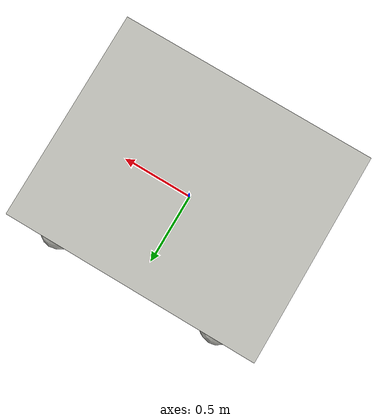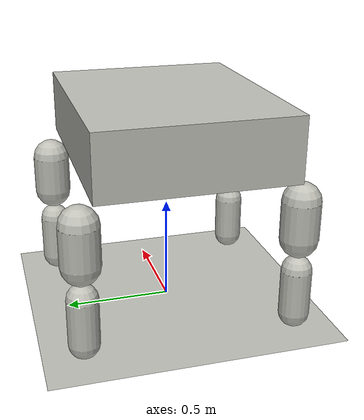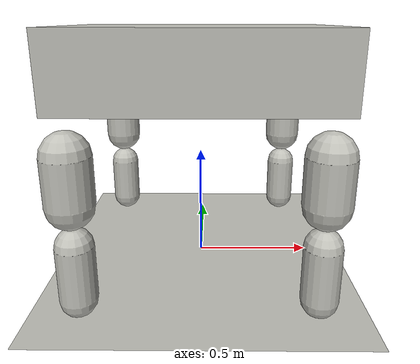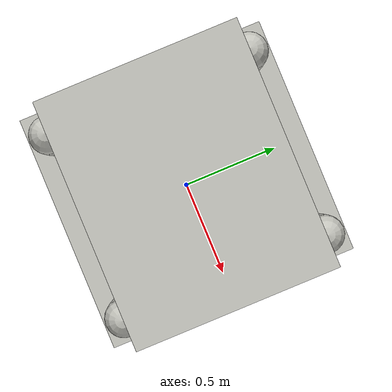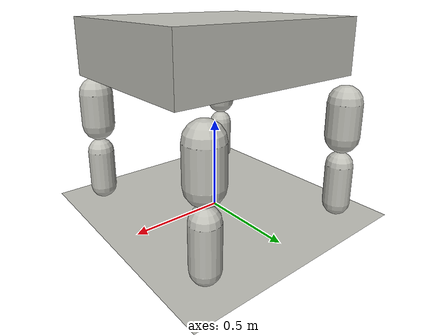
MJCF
<mujoco model="Quad_v01">
  <compiler angle="radian" autolimits="true" inertiafromgeom="auto"/>
  <option timestep="0.005" gravity="0 0 -9.81" integrator="implicitfast" cone="pyramidal"/>
  <size memory="16M"/>
  <visual><global offwidth="1280" offheight="720"/></visual>
  <default>
    <geom condim="3" friction="0.6 0.005 0.0001" solref="0.01 1" contype="1" conaffinity="1" rgba="0.75 0.75 0.72 1"/>
    <joint type="hinge" limited="true" armature="0" frictionloss="0" solreflimit="0.01 1"/>
  </default>
  <asset>
    <texture name="grid" type="2d" builtin="checker" rgb1="0.32 0.34 0.36" rgb2="0.26 0.28 0.3" width="256" height="256"/>
    <material name="grid" texture="grid" texrepeat="8 8" reflectance="0"/>
  </asset>
  <worldbody>
    <light pos="0 0 6" dir="0 0 -1" directional="true"/>
    <geom name="floor" type="plane" size="50 50 0.1" material="grid" friction="0.6 0.005 0.0001" solref="0.01 1"/>
    <body name="Quad_v01" pos="0 0 0.9">
      <freejoint name="root"/>
      <site name="root_site" size="0.02"/>
      <camera name="track" mode="trackcom" pos="-3 0 1.5" xyaxes="0 -1 0 0.45 0 0.9"/>
      <geom name="Quad_v01_geom" type="box" size="0.55 0.45 0.15" pos="0 0 0" mass="60"/>
      <body name="Upper_-1_-1" pos="-0.451 0.495 -0.36">
        <joint name="Upper_-1_-1" pos="0 0 0.18" axis="0 1 0" range="-0.785398 0.785398" damping="300"/>
        <geom name="Upper_-1_-1_geom" type="capsule" size="0.09" fromto="0 0 -0.09 0 0 0.09" mass="4"/>
        <body name="Lower_-1_-1" pos="0 0 -0.36">
          <joint name="Lower_-1_-1" pos="0 0 0.18" axis="0 1 0" range="-1.0472 1.0472" damping="300"/>
          <geom name="Lower_-1_-1_geom" type="capsule" size="0.072" fromto="0 0 -0.108 0 0 0.108" mass="3.5"/>
        </body>
      </body>
      <body name="Upper_-1_1" pos="0.451 0.495 -0.36">
        <joint name="Upper_-1_1" pos="0 0 0.18" axis="0 1 0" range="-0.785398 0.785398" damping="300"/>
        <geom name="Upper_-1_1_geom" type="capsule" size="0.09" fromto="0 0 -0.09 0 0 0.09" mass="4"/>
        <body name="Lower_-1_1" pos="0 0 -0.36">
          <joint name="Lower_-1_1" pos="0 0 0.18" axis="0 1 0" range="-1.0472 1.0472" damping="300"/>
          <geom name="Lower_-1_1_geom" type="capsule" size="0.072" fromto="0 0 -0.108 0 0 0.108" mass="3.5"/>
        </body>
      </body>
      <body name="Upper_1_-1" pos="-0.451 -0.495 -0.36">
        <joint name="Upper_1_-1" pos="0 0 0.18" axis="0 1 0" range="-0.785398 0.785398" damping="300"/>
        <geom name="Upper_1_-1_geom" type="capsule" size="0.09" fromto="0 0 -0.09 0 0 0.09" mass="4"/>
        <body name="Lower_1_-1" pos="0 0 -0.36">
          <joint name="Lower_1_-1" pos="0 0 0.18" axis="0 1 0" range="-1.0472 1.0472" damping="300"/>
          <geom name="Lower_1_-1_geom" type="capsule" size="0.072" fromto="0 0 -0.108 0 0 0.108" mass="3.5"/>
        </body>
      </body>
      <body name="Upper_1_1" pos="0.451 -0.495 -0.36">
        <joint name="Upper_1_1" pos="0 0 0.18" axis="0 1 0" range="-0.785398 0.785398" damping="300"/>
        <geom name="Upper_1_1_geom" type="capsule" size="0.09" fromto="0 0 -0.09 0 0 0.09" mass="4"/>
        <body name="Lower_1_1" pos="0 0 -0.36">
          <joint name="Lower_1_1" pos="0 0 0.18" axis="0 1 0" range="-1.0472 1.0472" damping="300"/>
          <geom name="Lower_1_1_geom" type="capsule" size="0.072" fromto="0 0 -0.108 0 0 0.108" mass="3.5"/>
        </body>
      </body>
    </body>
  </worldbody>
  <actuator>
    <position name="Upper_-1_-1" joint="Upper_-1_-1" kp="4500" forcerange="-900 900" ctrlrange="-0.785398 0.785398"/>
    <position name="Lower_-1_-1" joint="Lower_-1_-1" kp="4500" forcerange="-900 900" ctrlrange="-0.785398 0.785398"/>
    <position name="Upper_-1_1" joint="Upper_-1_1" kp="4500" forcerange="-900 900" ctrlrange="-0.785398 0.785398"/>
    <position name="Lower_-1_1" joint="Lower_-1_1" kp="4500" forcerange="-900 900" ctrlrange="-0.785398 0.785398"/>
    <position name="Upper_1_-1" joint="Upper_1_-1" kp="4500" forcerange="-900 900" ctrlrange="-0.785398 0.785398"/>
    <position name="Lower_1_-1" joint="Lower_1_-1" kp="4500" forcerange="-900 900" ctrlrange="-0.785398 0.785398"/>
    <position name="Upper_1_1" joint="Upper_1_1" kp="4500" forcerange="-900 900" ctrlrange="-0.785398 0.785398"/>
    <position name="Lower_1_1" joint="Lower_1_1" kp="4500" forcerange="-900 900" ctrlrange="-0.785398 0.785398"/>
  </actuator>
  <keyframe>
    <key name="spawn" qpos="0 0 0.9 1 0 0 0 0 0 0 0 0 0 0 0" ctrl="0 0 0 0 0 0 0 0"/>
    <key name="rest" qpos="0 0 0.9 1 0 0 0 0 0 0 0 0 0 0 0" ctrl="0 0 0 0 0 0 0 0"/>
  </keyframe>
</mujoco>
